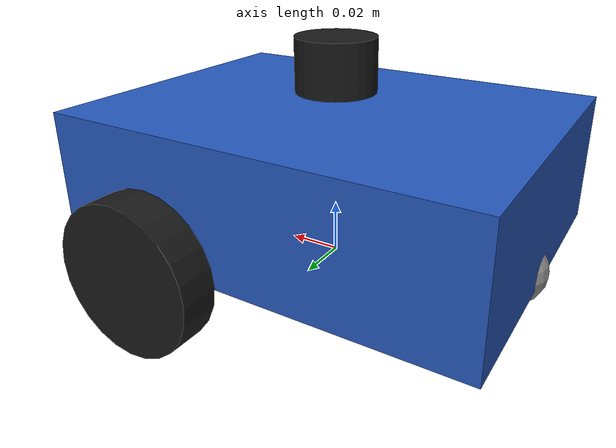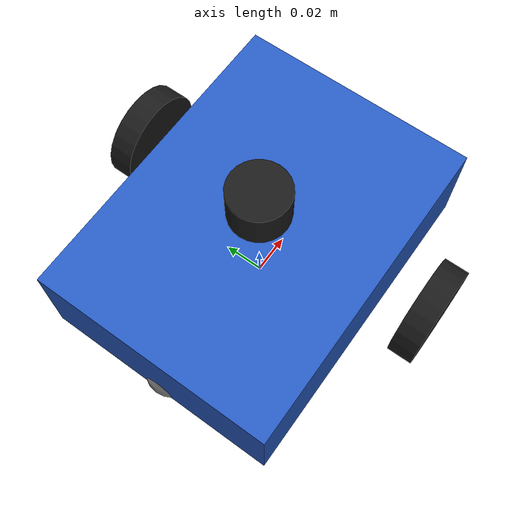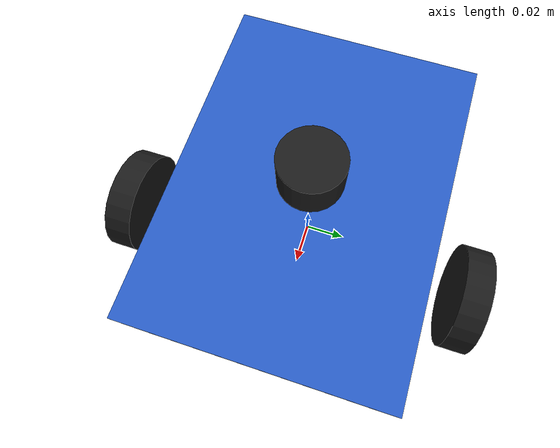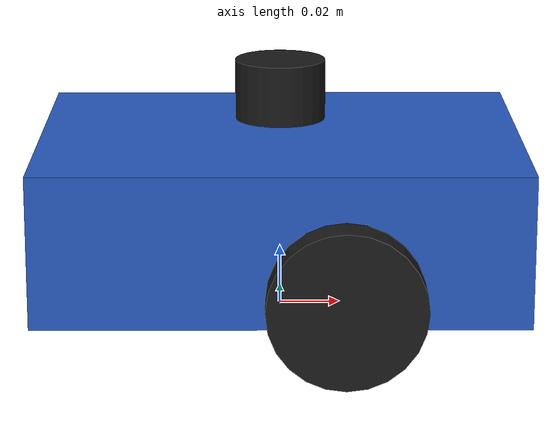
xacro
<?xml version="1.0"?>
<!-- 智慧社区巡检机器人：差速底盘 + 2D LiDAR + RGB 相机 + IMU（Gazebo Harmonic） -->
<robot name="patrol_bot" xmlns:xacro="http://www.ros.org/wiki/xacro">

  <material name="black"><color rgba="0.1 0.1 0.1 1"/></material>
  <material name="grey"><color rgba="0.55 0.55 0.55 1"/></material>
  <material name="blue"><color rgba="0.15 0.35 0.75 1"/></material>

  <!-- 整车等比缩放系数：改这一个数即可整体改小/改大小车。
       只缩几何尺寸（车轮/底盘/传感器安装位），不动速度、视野、分辨率等
       功能参数，导航、SLAM、红绿灯识别均不受影响。 -->
  <xacro:arg name="scale" default="0.5"/>
  <xacro:property name="scale" value="$(arg scale)"/>

  <xacro:property name="wheel_radius" value="${0.05 * scale}"/>
  <xacro:property name="wheel_width" value="${0.025 * scale}"/>
  <xacro:property name="wheel_separation" value="${0.33 * scale}"/>
  <xacro:property name="half_sep" value="${wheel_separation / 2.0}"/>
  <xacro:property name="body_length" value="${0.32 * scale}"/>
  <xacro:property name="body_width" value="${0.24 * scale}"/>
  <xacro:property name="body_height" value="${0.10 * scale}"/>
  <!-- base_z 必须等于 wheel_radius：base_link 抬到轮轴高度，轮子才能贴地 -->
  <xacro:property name="base_z" value="${wheel_radius}"/>

  <!-- base_footprint 是 TF 树的根（贴地面），base_link 挂在它上方 base_z 处。
       顺序不能反：若 base_link 当根，KDL 会因「根节点带惯量」报警。 -->
  <link name="base_footprint"/>
  <joint name="base_footprint_joint" type="fixed">
    <parent link="base_footprint"/>
    <child link="base_link"/>
    <origin xyz="0 0 ${base_z}" rpy="0 0 0"/>
  </joint>

  <link name="base_link">
    <inertial>
      <mass value="2.5"/>
      <origin xyz="0 0 0"/>
      <inertia ixx="0.02" ixy="0" ixz="0" iyy="0.02" iyz="0" izz="0.03"/>
    </inertial>
    <visual>
      <origin xyz="0 0 ${0.02 * scale}" rpy="0 0 0"/>
      <geometry><box size="${body_length} ${body_width} ${body_height}"/></geometry>
      <material name="blue"/>
    </visual>
    <collision>
      <origin xyz="0 0 ${0.02 * scale}" rpy="0 0 0"/>
      <geometry><box size="${body_length} ${body_width} ${body_height}"/></geometry>
    </collision>
  </link>

  <xacro:macro name="wheel" params="name y_pos">
    <link name="${name}">
      <inertial>
        <mass value="0.1"/>
        <origin xyz="0 0 0"/>
        <inertia ixx="0.00006" ixy="0" ixz="0" iyy="0.00006" iyz="0" izz="0.00006"/>
      </inertial>
      <visual>
        <origin xyz="0 0 0" rpy="1.5708 0 0"/>
        <geometry><cylinder radius="${wheel_radius}" length="${wheel_width}"/></geometry>
        <material name="black"/>
      </visual>
      <collision>
        <origin xyz="0 0 0" rpy="1.5708 0 0"/>
        <geometry><cylinder radius="${wheel_radius}" length="${wheel_width}"/></geometry>
      </collision>
    </link>
    <joint name="${name}_joint" type="continuous">
      <parent link="base_link"/>
      <child link="${name}"/>
      <origin xyz="${0.04 * scale} ${y_pos} 0" rpy="0 0 0"/>
      <!-- 轮轴必须指向 +Y：指向 -Y 会让 gz 的 DiffDrive 把 linear.x>0 解释成往 -X 走，
           小车就会“倒着走”（前进方向与车头相反，相机装在 +X 侧）。 -->
      <axis xyz="0 1 0"/>
    </joint>
    <gazebo reference="${name}">
      <mu1>1.0</mu1>
      <mu2>1.0</mu2>
    </gazebo>
  </xacro:macro>

  <xacro:wheel name="left_wheel" y_pos="${half_sep}"/>
  <xacro:wheel name="right_wheel" y_pos="${-half_sep}"/>

  <link name="caster">
    <inertial>
      <mass value="0.02"/>
      <origin xyz="0 0 0"/>
      <inertia ixx="0.00001" ixy="0" ixz="0" iyy="0.00001" iyz="0" izz="0.00001"/>
    </inertial>
    <visual><geometry><sphere radius="${0.025 * scale}"/></geometry><material name="grey"/></visual>
    <collision><geometry><sphere radius="${0.025 * scale}"/></geometry></collision>
  </link>
  <joint name="caster_joint" type="fixed">
    <parent link="base_link"/>
    <child link="caster"/>
    <origin xyz="${-0.14 * scale} 0 ${-0.025 * scale}" rpy="0 0 0"/>
  </joint>
  <gazebo reference="caster">
    <mu1>0.01</mu1>
    <mu2>0.01</mu2>
  </gazebo>

  <link name="lidar_link">
    <inertial>
      <mass value="0.1"/>
      <origin xyz="0 0 0"/>
      <inertia ixx="0.0001" ixy="0" ixz="0" iyy="0.0001" iyz="0" izz="0.0001"/>
    </inertial>
    <visual><geometry><cylinder radius="${0.03 * scale}" length="${0.04 * scale}"/></geometry><material name="black"/></visual>
  </link>
  <joint name="lidar_joint" type="fixed">
    <parent link="base_link"/>
    <child link="lidar_link"/>
    <origin xyz="0 0 ${0.10 * scale}" rpy="0 0 0"/>
  </joint>

  <link name="camera_link">
    <inertial>
      <mass value="0.05"/>
      <origin xyz="0 0 0"/>
      <inertia ixx="0.00001" ixy="0" ixz="0" iyy="0.00001" iyz="0" izz="0.00001"/>
    </inertial>
  </link>
  <joint name="camera_joint" type="fixed">
    <parent link="base_link"/>
    <child link="camera_link"/>
    <origin xyz="${0.16 * scale} 0 ${0.06 * scale}" rpy="0 -0.2 0"/>
  </joint>

  <link name="imu_link">
    <inertial>
      <mass value="0.02"/>
      <origin xyz="0 0 0"/>
      <inertia ixx="0.00001" ixy="0" ixz="0" iyy="0.00001" iyz="0" izz="0.00001"/>
    </inertial>
  </link>
  <joint name="imu_joint" type="fixed">
    <parent link="base_link"/>
    <child link="imu_link"/>
    <origin xyz="0 0 ${0.04 * scale}" rpy="0 0 0"/>
  </joint>

  <gazebo>
    <plugin filename="gz-sim-diff-drive-system" name="gz::sim::systems::DiffDrive">
      <left_joint>left_wheel_joint</left_joint>
      <right_joint>right_wheel_joint</right_joint>
      <wheel_separation>${wheel_separation}</wheel_separation>
      <wheel_radius>${wheel_radius}</wheel_radius>
      <odom_publish_frequency>30</odom_publish_frequency>
      <max_linear_acceleration>2.0</max_linear_acceleration>
      <min_linear_acceleration>-2.0</min_linear_acceleration>
      <max_angular_acceleration>4.0</max_angular_acceleration>
      <min_angular_acceleration>-4.0</min_angular_acceleration>
      <max_linear_velocity>0.5</max_linear_velocity>
      <min_linear_velocity>-0.5</min_linear_velocity>
      <max_angular_velocity>2.0</max_angular_velocity>
      <min_angular_velocity>-2.0</min_angular_velocity>
    </plugin>
  </gazebo>

  <gazebo>
    <plugin filename="gz-sim-joint-state-publisher-system" name="gz::sim::systems::JointStatePublisher">
      <update_rate>30</update_rate>
    </plugin>
  </gazebo>

  <gazebo>
    <plugin filename="gz-sim-imu-system" name="gz::sim::systems::Imu"/>
  </gazebo>

  <gazebo reference="lidar_link">
    <sensor name="lidar" type="gpu_lidar">
      <lidar>
        <scan>
          <horizontal>
            <samples>360</samples>
            <resolution>1</resolution>
            <min_angle>-3.14159</min_angle>
            <max_angle>3.14159</max_angle>
          </horizontal>
          <vertical>
            <samples>1</samples>
            <resolution>1</resolution>
            <min_angle>0</min_angle>
            <max_angle>0</max_angle>
          </vertical>
        </scan>
        <range><min>0.1</min><max>12.0</max><resolution>0.01</resolution></range>
      </lidar>
      <always_on>1</always_on>
      <update_rate>30</update_rate>
      <topic>lidar</topic>
    </sensor>
  </gazebo>

  <gazebo reference="camera_link">
    <sensor name="camera" type="camera">
      <camera>
        <horizontal_fov>1.047</horizontal_fov>
        <image><width>640</width><height>480</height></image>
        <clip><near>0.05</near><far>20</far></clip>
      </camera>
      <always_on>1</always_on>
      <update_rate>30</update_rate>
      <topic>camera</topic>
    </sensor>
  </gazebo>

  <gazebo reference="imu_link">
    <sensor name="imu" type="imu">
      <always_on>1</always_on>
      <update_rate>50</update_rate>
      <visualize>true</visualize>
      <topic>imu</topic>
      <enable_metrics>true</enable_metrics>
    </sensor>
  </gazebo>

</robot>
